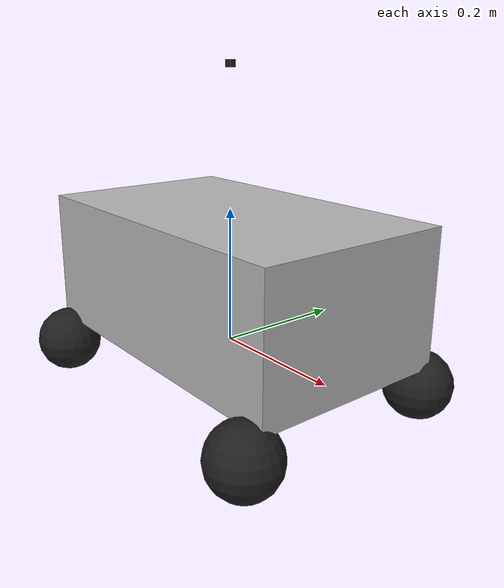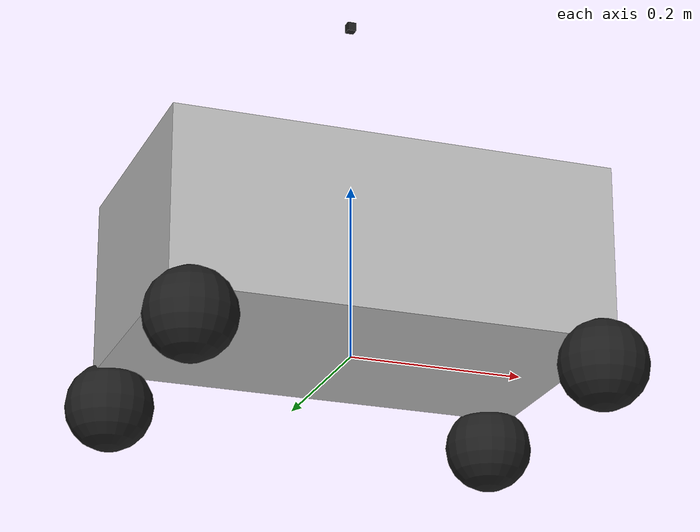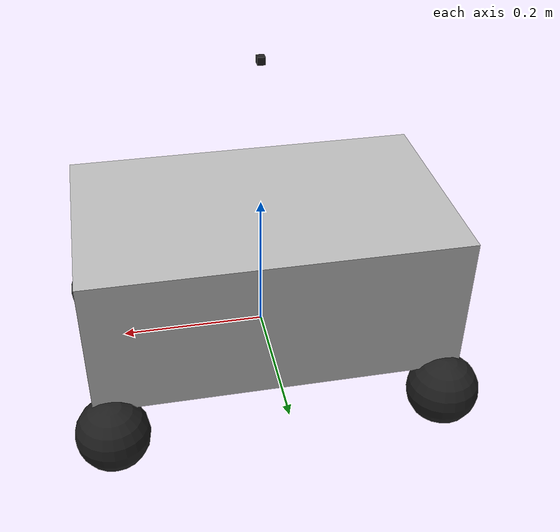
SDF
<?xml version='1.0'?>
<sdf version='1.6'>
  <model name='omnirob'>
    <link name='omnirob_footprint'>
      <pose frame=''>0 0 0 0 -0 0</pose>
      <inertial>
        <pose frame=''>0 0 0.102263 0 -0 0</pose>
        <mass>15.114</mass>
        <inertia>
          <ixx>1.01118</ixx>
          <ixy>0</ixy>
          <ixz>0</ixz>
          <iyy>1.01118</iyy>
          <iyz>0</iyz>
          <izz>1.001</izz>
        </inertia>
      </inertial>
      <gravity>1</gravity>
      <velocity_decay/>
      <sensor name="hls_lfcd_lds" type="ray">
        <always_on>true</always_on>
        <visualize>true</visualize>
        <pose>0.0 0 0.4 0 0 0</pose>
        <update_rate>5</update_rate>
        <ray>
          <scan>
            <horizontal>
              <samples>360</samples>
              <resolution>1.000000</resolution>
              <min_angle>0.000000</min_angle>
              <max_angle>6.280000</max_angle>
            </horizontal>
          </scan>
          <range>
            <min>0.120000</min>
            <max>3.5</max>
            <resolution>0.015000</resolution>
          </range>
          <noise>
            <type>gaussian</type>
            <mean>0.0</mean>
            <stddev>0.01</stddev>
          </noise>
        </ray>
        <plugin name="turtlebot3_laserscan" filename="libgazebo_ros_ray_sensor.so">
          <ros>
            <argument>~/out:=scan</argument>
          </ros>
          <output_type>sensor_msgs/LaserScan</output_type>
          <frame_name>base_scan</frame_name>
        </plugin>
      </sensor>

      <self_collide>0</self_collide>
      <enable_wind>0</enable_wind>
      <kinematic>0</kinematic>
      <visual name='omnirob_footprint_fixed_joint_lump__base_scan_visual_1'>
        <pose frame=''>0 0 0.4 0 -0 0</pose>
        <geometry>
          <box>
            <size>0.01 0.01 0.01</size>
          </box>
        </geometry>
        <material>
          <script>
            <name>Gazebo/FlatBlack</name>
            <uri>file://media/materials/scripts/gazebo.material</uri>
          </script>
          <shader type='pixel'/>
        </material>
        <transparency>0</transparency>
        <cast_shadows>1</cast_shadows>
      </visual>
      <visual name='omnirob_footprint_fixed_joint_lump__omnirob_body_visual'>
        <pose frame=''>0 0 0.1 0 -0 0</pose>
        <geometry>
          <box>
            <size>0.5 0.3 0.2</size>
          </box>
        </geometry>
        <material>
          <shader type='pixel'/>
        </material>
        <transparency>0</transparency>
        <cast_shadows>1</cast_shadows>
      </visual>
      <collision name='omnirob_footprint_fixed_joint_lump__omnirob_body_collision'>
        <laser_retro>0</laser_retro>
        <max_contacts>10</max_contacts>
        <pose frame=''>0 0 0.1 0 -0 0</pose>
        <geometry>
          <box>
            <size>0.5 0.3 0.2</size>
          </box>
        </geometry>
        <surface>
          <friction>
            <ode>
              <mu>1</mu>
              <mu2>1</mu2>
              <fdir1>0 0 0</fdir1>
              <slip1>0</slip1>
              <slip2>0</slip2>
            </ode>
            <torsional>
              <coefficient>1</coefficient>
              <patch_radius>0</patch_radius>
              <surface_radius>0</surface_radius>
              <use_patch_radius>1</use_patch_radius>
              <ode>
                <slip>0</slip>
              </ode>
            </torsional>
          </friction>
          <bounce>
            <restitution_coefficient>0</restitution_coefficient>
            <threshold>1e+06</threshold>
          </bounce>
          <contact>
            <collide_without_contact>0</collide_without_contact>
            <collide_without_contact_bitmask>1</collide_without_contact_bitmask>
            <collide_bitmask>1</collide_bitmask>
            <ode>
              <soft_cfm>0</soft_cfm>
              <soft_erp>0.2</soft_erp>
              <kp>1e+13</kp>
              <kd>1</kd>
              <max_vel>0.01</max_vel>
              <min_depth>0</min_depth>
            </ode>
            <bullet>
              <split_impulse>1</split_impulse>
              <split_impulse_penetration_threshold>-0.01</split_impulse_penetration_threshold>
              <soft_cfm>0</soft_cfm>
              <soft_erp>0.2</soft_erp>
              <kp>1e+13</kp>
              <kd>1</kd>
            </bullet>
          </contact>
        </surface>
      </collision>
      <collision name='omnirob_footprint_fixed_joint_lump__base_scan_collision_1'>
        <laser_retro>0</laser_retro>
        <max_contacts>10</max_contacts>
        <pose frame=''>0.015 0 0.3935 0 -0 0</pose>
        <geometry>
          <cylinder>
            <radius>0.055</radius>
            <length>0.0315</length>
          </cylinder>
        </geometry>
        <surface>
          <friction>
            <ode>
              <mu>1</mu>
              <mu2>1</mu2>
              <fdir1>0 0 0</fdir1>
              <slip1>0</slip1>
              <slip2>0</slip2>
            </ode>
            <torsional>
              <coefficient>1</coefficient>
              <patch_radius>0</patch_radius>
              <surface_radius>0</surface_radius>
              <use_patch_radius>1</use_patch_radius>
              <ode>
                <slip>0</slip>
              </ode>
            </torsional>
          </friction>
          <bounce>
            <restitution_coefficient>0</restitution_coefficient>
            <threshold>1e+06</threshold>
          </bounce>
          <contact>
            <collide_without_contact>0</collide_without_contact>
            <collide_without_contact_bitmask>1</collide_without_contact_bitmask>
            <collide_bitmask>1</collide_bitmask>
            <ode>
              <soft_cfm>0</soft_cfm>
              <soft_erp>0.2</soft_erp>
              <kp>1e+13</kp>
              <kd>1</kd>
              <max_vel>0.01</max_vel>
              <min_depth>0</min_depth>
            </ode>
            <bullet>
              <split_impulse>1</split_impulse>
              <split_impulse_penetration_threshold>-0.01</split_impulse_penetration_threshold>
              <soft_cfm>0</soft_cfm>
              <soft_erp>0.2</soft_erp>
              <kp>1e+13</kp>
              <kd>1</kd>
            </bullet>
          </contact>
        </surface>
      </collision>
    </link>
    <link name='caster_link_back_left'>
      <pose frame=''>-0.228 0.158 -0.034 0 -0 0</pose>
      <inertial>
        <pose frame=''>0 0 0 0 -0 0</pose>
        <mass>0.1</mass>
        <inertia>
          <ixx>0.0124118</ixx>
          <ixy>-0.000711734</ixy>
          <ixz>0.00050273</ixz>
          <iyy>0.0152182</iyy>
          <iyz>-4.27347e-06</iyz>
          <izz>0.011764</izz>
        </inertia>
      </inertial>
      <self_collide>0</self_collide>
      <enable_wind>0</enable_wind>
      <kinematic>0</kinematic>
    </link>
    <link name='caster_link_back_right'>
      <pose frame=''>-0.228 -0.158 -0.034 0 -0 0</pose>
      <inertial>
        <pose frame=''>0 0 0 0 -0 0</pose>
        <mass>0.1</mass>
        <inertia>
          <ixx>0.0124118</ixx>
          <ixy>-0.000711734</ixy>
          <ixz>0.00050273</ixz>
          <iyy>0.0152182</iyy>
          <iyz>-4.27347e-06</iyz>
          <izz>0.011764</izz>
        </inertia>
      </inertial>
      <self_collide>0</self_collide>
      <enable_wind>0</enable_wind>
      <kinematic>0</kinematic>
    </link>
    <link name='caster_link_front_left'>
      <pose frame=''>0.228 0.158 -0.034 0 -0 0</pose>
      <inertial>
        <pose frame=''>0 0 0 0 -0 0</pose>
        <mass>0.1</mass>
        <inertia>
          <ixx>0.0124118</ixx>
          <ixy>-0.000711734</ixy>
          <ixz>0.00050273</ixz>
          <iyy>0.0152182</iyy>
          <iyz>-4.27347e-06</iyz>
          <izz>0.011764</izz>
        </inertia>
      </inertial>
      <self_collide>0</self_collide>
      <enable_wind>0</enable_wind>
      <kinematic>0</kinematic>
    </link>
    <link name='caster_link_front_right'>
      <pose frame=''>0.228 -0.158 -0.034 0 -0 0</pose>
      <inertial>
        <pose frame=''>0 0 0 0 -0 0</pose>
        <mass>0.1</mass>
        <inertia>
          <ixx>0.0124118</ixx>
          <ixy>-0.000711734</ixy>
          <ixz>0.00050273</ixz>
          <iyy>0.0152182</iyy>
          <iyz>-4.27347e-06</iyz>
          <izz>0.011764</izz>
        </inertia>
      </inertial>
      <self_collide>0</self_collide>
      <enable_wind>0</enable_wind>
      <kinematic>0</kinematic>
    </link>
    <link name='wheel_link_back_left'>
      <pose frame=''>-0.228 0.158 -0.034 0 -0 0</pose>
      <inertial>
        <pose frame=''>0 0 0 0 -0 0</pose>
        <mass>0.4</mass>
        <inertia>
          <ixx>0.0124118</ixx>
          <ixy>-0.000711734</ixy>
          <ixz>0.00050273</ixz>
          <iyy>0.0152182</iyy>
          <iyz>-4.27347e-06</iyz>
          <izz>0.011764</izz>
        </inertia>
      </inertial>
      <gravity>1</gravity>
      <velocity_decay/>
      <self_collide>0</self_collide>
      <enable_wind>0</enable_wind>
      <kinematic>0</kinematic>
      <visual name='wheel_link_back_left_visual'>
        <pose frame=''>0 0 0 0 -0 0</pose>
        <geometry>
          <sphere>
            <radius>0.05</radius>
          </sphere>
        </geometry>
        <material>
          <script>
            <name>Gazebo/FlatBlack</name>
            <uri>file://media/materials/scripts/gazebo.material</uri>
          </script>
          <shader type='pixel'/>
        </material>
        <transparency>0</transparency>
        <cast_shadows>1</cast_shadows>
      </visual>
      <collision name='wheel_link_back_left_collision'>
        <laser_retro>0</laser_retro>
        <max_contacts>10</max_contacts>
        <pose frame=''>0 0 0 1.5708 -0 0</pose>
        <geometry>
          <cylinder>
            <radius>0.05</radius>
            <length>0.05</length>
          </cylinder>
        </geometry>
        <surface>
          <friction>
            <ode>
              <mu>0.1</mu>
              <mu2>0.1</mu2>
              <fdir1>1 1 0</fdir1>
              <slip1>0</slip1>
              <slip2>0</slip2>
            </ode>
            <torsional>
              <coefficient>1</coefficient>
              <patch_radius>0</patch_radius>
              <surface_radius>0</surface_radius>
              <use_patch_radius>1</use_patch_radius>
              <ode>
                <slip>0</slip>
              </ode>
            </torsional>
          </friction>
          <bounce>
            <restitution_coefficient>0</restitution_coefficient>
            <threshold>1e+06</threshold>
          </bounce>
          <contact>
            <collide_without_contact>0</collide_without_contact>
            <collide_without_contact_bitmask>1</collide_without_contact_bitmask>
            <collide_bitmask>1</collide_bitmask>
            <ode>
              <soft_cfm>0</soft_cfm>
              <soft_erp>0.2</soft_erp>
              <kp>500000</kp>
              <kd>10</kd>
              <max_vel>0.1</max_vel>
              <min_depth>0.001</min_depth>
            </ode>
            <bullet>
              <split_impulse>1</split_impulse>
              <split_impulse_penetration_threshold>-0.01</split_impulse_penetration_threshold>
              <soft_cfm>0</soft_cfm>
              <soft_erp>0.2</soft_erp>
              <kp>500000</kp>
              <kd>10</kd>
            </bullet>
          </contact>
        </surface>
      </collision>
    </link>
    <link name='wheel_link_back_right'>
      <pose frame=''>-0.228 -0.158 -0.034 0 -0 0</pose>
      <inertial>
        <pose frame=''>0 0 0 0 -0 0</pose>
        <mass>0.4</mass>
        <inertia>
          <ixx>0.0124118</ixx>
          <ixy>-0.000711734</ixy>
          <ixz>0.00050273</ixz>
          <iyy>0.0152182</iyy>
          <iyz>-4.27347e-06</iyz>
          <izz>0.011764</izz>
        </inertia>
      </inertial>
      <gravity>1</gravity>
      <velocity_decay/>
      <self_collide>0</self_collide>
      <enable_wind>0</enable_wind>
      <kinematic>0</kinematic>
      <visual name='wheel_link_back_right_visual'>
        <pose frame=''>0 0 0 0 -0 0</pose>
        <geometry>
          <sphere>
            <radius>0.05</radius>
          </sphere>
        </geometry>
        <material>
          <script>
            <name>Gazebo/FlatBlack</name>
            <uri>file://media/materials/scripts/gazebo.material</uri>
          </script>
          <shader type='pixel'/>
        </material>
        <transparency>0</transparency>
        <cast_shadows>1</cast_shadows>
      </visual>
      <collision name='wheel_link_back_right_collision'>
        <laser_retro>0</laser_retro>
        <max_contacts>10</max_contacts>
        <pose frame=''>0 0 0 1.5708 -0 0</pose>
        <geometry>
          <cylinder>
            <radius>0.05</radius>
            <length>0.05</length>
          </cylinder>
        </geometry>
        <surface>
          <friction>
            <ode>
              <mu>0.1</mu>
              <mu2>0.1</mu2>
              <fdir1>1 1 0</fdir1>
              <slip1>0</slip1>
              <slip2>0</slip2>
            </ode>
            <torsional>
              <coefficient>1</coefficient>
              <patch_radius>0</patch_radius>
              <surface_radius>0</surface_radius>
              <use_patch_radius>1</use_patch_radius>
              <ode>
                <slip>0</slip>
              </ode>
            </torsional>
          </friction>
          <bounce>
            <restitution_coefficient>0</restitution_coefficient>
            <threshold>1e+06</threshold>
          </bounce>
          <contact>
            <collide_without_contact>0</collide_without_contact>
            <collide_without_contact_bitmask>1</collide_without_contact_bitmask>
            <collide_bitmask>1</collide_bitmask>
            <ode>
              <soft_cfm>0</soft_cfm>
              <soft_erp>0.2</soft_erp>
              <kp>500000</kp>
              <kd>10</kd>
              <max_vel>0.1</max_vel>
              <min_depth>0.001</min_depth>
            </ode>
            <bullet>
              <split_impulse>1</split_impulse>
              <split_impulse_penetration_threshold>-0.01</split_impulse_penetration_threshold>
              <soft_cfm>0</soft_cfm>
              <soft_erp>0.2</soft_erp>
              <kp>500000</kp>
              <kd>10</kd>
            </bullet>
          </contact>
        </surface>
      </collision>
    </link>
    <link name='wheel_link_front_left'>
      <pose frame=''>0.228 0.158 -0.034 0 -0 0</pose>
      <inertial>
        <pose frame=''>0 0 0 0 -0 0</pose>
        <mass>0.4</mass>
        <inertia>
          <ixx>0.0124118</ixx>
          <ixy>-0.000711734</ixy>
          <ixz>0.00050273</ixz>
          <iyy>0.0152182</iyy>
          <iyz>-4.27347e-06</iyz>
          <izz>0.011764</izz>
        </inertia>
      </inertial>
      <gravity>1</gravity>
      <velocity_decay/>
      <self_collide>0</self_collide>
      <enable_wind>0</enable_wind>
      <kinematic>0</kinematic>
      <visual name='wheel_link_front_left_visual'>
        <pose frame=''>0 0 0 0 -0 0</pose>
        <geometry>
          <sphere>
            <radius>0.05</radius>
          </sphere>
        </geometry>
        <material>
          <script>
            <name>Gazebo/FlatBlack</name>
            <uri>file://media/materials/scripts/gazebo.material</uri>
          </script>
          <shader type='pixel'/>
        </material>
        <transparency>0</transparency>
        <cast_shadows>1</cast_shadows>
      </visual>
      <collision name='wheel_link_front_left_collision'>
        <laser_retro>0</laser_retro>
        <max_contacts>10</max_contacts>
        <pose frame=''>0 0 0 1.5708 -0 0</pose>
        <geometry>
          <cylinder>
            <radius>0.05</radius>
            <length>0.05</length>
          </cylinder>
        </geometry>
        <surface>
          <friction>
            <ode>
              <mu>0.1</mu>
              <mu2>0.1</mu2>
              <fdir1>1 1 0</fdir1>
              <slip1>0</slip1>
              <slip2>0</slip2>
            </ode>
            <torsional>
              <coefficient>1</coefficient>
              <patch_radius>0</patch_radius>
              <surface_radius>0</surface_radius>
              <use_patch_radius>1</use_patch_radius>
              <ode>
                <slip>0</slip>
              </ode>
            </torsional>
          </friction>
          <bounce>
            <restitution_coefficient>0</restitution_coefficient>
            <threshold>1e+06</threshold>
          </bounce>
          <contact>
            <collide_without_contact>0</collide_without_contact>
            <collide_without_contact_bitmask>1</collide_without_contact_bitmask>
            <collide_bitmask>1</collide_bitmask>
            <ode>
              <soft_cfm>0</soft_cfm>
              <soft_erp>0.2</soft_erp>
              <kp>500000</kp>
              <kd>10</kd>
              <max_vel>0.1</max_vel>
              <min_depth>0.001</min_depth>
            </ode>
            <bullet>
              <split_impulse>1</split_impulse>
              <split_impulse_penetration_threshold>-0.01</split_impulse_penetration_threshold>
              <soft_cfm>0</soft_cfm>
              <soft_erp>0.2</soft_erp>
              <kp>500000</kp>
              <kd>10</kd>
            </bullet>
          </contact>
        </surface>
      </collision>
    </link>
    <link name='wheel_link_front_right'>
      <pose frame=''>0.228 -0.158 -0.034 0 -0 0</pose>
      <inertial>
        <pose frame=''>0 0 0 0 -0 0</pose>
        <mass>0.4</mass>
        <inertia>
          <ixx>0.0124118</ixx>
          <ixy>-0.000711734</ixy>
          <ixz>0.00050273</ixz>
          <iyy>0.0152182</iyy>
          <iyz>-4.27347e-06</iyz>
          <izz>0.011764</izz>
        </inertia>
      </inertial>
      <gravity>1</gravity>
      <velocity_decay/>
      <self_collide>0</self_collide>
      <enable_wind>0</enable_wind>
      <kinematic>0</kinematic>
      <visual name='wheel_link_front_right_visual'>
        <pose frame=''>0 0 0 0 -0 0</pose>
        <geometry>
          <sphere>
            <radius>0.05</radius>
          </sphere>
        </geometry>
        <material>
          <script>
            <name>Gazebo/FlatBlack</name>
            <uri>file://media/materials/scripts/gazebo.material</uri>
          </script>
          <shader type='pixel'/>
        </material>
        <transparency>0</transparency>
        <cast_shadows>1</cast_shadows>
      </visual>
      <collision name='wheel_link_front_right_collision'>
        <laser_retro>0</laser_retro>
        <max_contacts>10</max_contacts>
        <pose frame=''>0 0 0 1.5708 -0 0</pose>
        <geometry>
          <cylinder>
            <radius>0.05</radius>
            <length>0.05</length>
          </cylinder>
        </geometry>
        <surface>
          <friction>
            <ode>
              <mu>0.1</mu>
              <mu2>0.1</mu2>
              <fdir1>1 1 0</fdir1>
              <slip1>0</slip1>
              <slip2>0</slip2>
            </ode>
            <torsional>
              <coefficient>1</coefficient>
              <patch_radius>0</patch_radius>
              <surface_radius>0</surface_radius>
              <use_patch_radius>1</use_patch_radius>
              <ode>
                <slip>0</slip>
              </ode>
            </torsional>
          </friction>
          <bounce>
            <restitution_coefficient>0</restitution_coefficient>
            <threshold>1e+06</threshold>
          </bounce>
          <contact>
            <collide_without_contact>0</collide_without_contact>
            <collide_without_contact_bitmask>1</collide_without_contact_bitmask>
            <collide_bitmask>1</collide_bitmask>
            <ode>
              <soft_cfm>0</soft_cfm>
              <soft_erp>0.2</soft_erp>
              <kp>500000</kp>
              <kd>10</kd>
              <max_vel>0.1</max_vel>
              <min_depth>0.001</min_depth>
            </ode>
            <bullet>
              <split_impulse>1</split_impulse>
              <split_impulse_penetration_threshold>-0.01</split_impulse_penetration_threshold>
              <soft_cfm>0</soft_cfm>
              <soft_erp>0.2</soft_erp>
              <kp>500000</kp>
              <kd>10</kd>
            </bullet>
          </contact>
        </surface>
      </collision>
    </link>
    <joint name='caster_joint_back_left' type='revolute'>
      <parent>omnirob_footprint</parent>
      <child>caster_link_back_left</child>
      <pose frame=''>0 0 0 0 -0 0</pose>
      <axis>
        <xyz>0 0 1</xyz>
        <use_parent_model_frame>1</use_parent_model_frame>
        <limit>
          <lower>-1e+16</lower>
          <upper>1e+16</upper>
          <effort>-1</effort>
          <velocity>-1</velocity>
        </limit>
        <dynamics>
          <spring_reference>0</spring_reference>
          <spring_stiffness>0</spring_stiffness>
          <damping>1</damping>
          <friction>1</friction>
        </dynamics>
      </axis>
      <physics>
        <ode>
          <limit>
            <cfm>0</cfm>
            <erp>0.2</erp>
          </limit>
          <suspension>
            <cfm>0</cfm>
            <erp>0.2</erp>
          </suspension>
        </ode>
      </physics>
    </joint>
    <joint name='caster_joint_back_right' type='revolute'>
      <parent>omnirob_footprint</parent>
      <child>caster_link_back_right</child>
      <pose frame=''>0 0 0 0 -0 0</pose>
      <axis>
        <xyz>0 0 1</xyz>
        <use_parent_model_frame>1</use_parent_model_frame>
        <limit>
          <lower>-1e+16</lower>
          <upper>1e+16</upper>
          <effort>-1</effort>
          <velocity>-1</velocity>
        </limit>
        <dynamics>
          <spring_reference>0</spring_reference>
          <spring_stiffness>0</spring_stiffness>
          <damping>1</damping>
          <friction>1</friction>
        </dynamics>
      </axis>
      <physics>
        <ode>
          <limit>
            <cfm>0</cfm>
            <erp>0.2</erp>
          </limit>
          <suspension>
            <cfm>0</cfm>
            <erp>0.2</erp>
          </suspension>
        </ode>
      </physics>
    </joint>
    <joint name='caster_joint_front_left' type='revolute'>
      <parent>omnirob_footprint</parent>
      <child>caster_link_front_left</child>
      <pose frame=''>0 0 0 0 -0 0</pose>
      <axis>
        <xyz>0 0 1</xyz>
        <use_parent_model_frame>1</use_parent_model_frame>
        <limit>
          <lower>-1e+16</lower>
          <upper>1e+16</upper>
          <effort>-1</effort>
          <velocity>-1</velocity>
        </limit>
        <dynamics>
          <spring_reference>0</spring_reference>
          <spring_stiffness>0</spring_stiffness>
          <damping>1</damping>
          <friction>1</friction>
        </dynamics>
      </axis>
      <physics>
        <ode>
          <limit>
            <cfm>0</cfm>
            <erp>0.2</erp>
          </limit>
          <suspension>
            <cfm>0</cfm>
            <erp>0.2</erp>
          </suspension>
        </ode>
      </physics>
    </joint>
    <joint name='caster_joint_front_right' type='revolute'>
      <parent>omnirob_footprint</parent>
      <child>caster_link_front_right</child>
      <pose frame=''>0 0 0 0 -0 0</pose>
      <axis>
        <xyz>0 0 1</xyz>
        <use_parent_model_frame>1</use_parent_model_frame>
        <limit>
          <lower>-1e+16</lower>
          <upper>1e+16</upper>
          <effort>-1</effort>
          <velocity>-1</velocity>
        </limit>
        <dynamics>
          <spring_reference>0</spring_reference>
          <spring_stiffness>0</spring_stiffness>
          <damping>1</damping>
          <friction>1</friction>
        </dynamics>
      </axis>
      <physics>
        <ode>
          <limit>
            <cfm>0</cfm>
            <erp>0.2</erp>
          </limit>
          <suspension>
            <cfm>0</cfm>
            <erp>0.2</erp>
          </suspension>
        </ode>
      </physics>
    </joint>
    <joint name='wheel_joint_back_left' type='revolute'>
      <parent>caster_link_back_left</parent>
      <child>wheel_link_back_left</child>
      <pose frame=''>0 0 0 0 -0 0</pose>
      <axis>
        <xyz>0 1 0</xyz>
        <use_parent_model_frame>1</use_parent_model_frame>
        <limit>
          <lower>-1e+16</lower>
          <upper>1e+16</upper>
          <effort>-1</effort>
          <velocity>-1</velocity>
        </limit>
        <dynamics>
          <spring_reference>0</spring_reference>
          <spring_stiffness>0</spring_stiffness>
          <damping>1</damping>
          <friction>1</friction>
        </dynamics>
      </axis>
      <physics>
        <ode>
          <limit>
            <cfm>0</cfm>
            <erp>0.2</erp>
          </limit>
          <suspension>
            <cfm>0</cfm>
            <erp>0.2</erp>
          </suspension>
        </ode>
      </physics>
    </joint>
    <joint name='wheel_joint_back_right' type='revolute'>
      <parent>caster_link_back_right</parent>
      <child>wheel_link_back_right</child>
      <pose frame=''>0 0 0 0 -0 0</pose>
      <axis>
        <xyz>0 1 0</xyz>
        <use_parent_model_frame>1</use_parent_model_frame>
        <limit>
          <lower>-1e+16</lower>
          <upper>1e+16</upper>
          <effort>-1</effort>
          <velocity>-1</velocity>
        </limit>
        <dynamics>
          <spring_reference>0</spring_reference>
          <spring_stiffness>0</spring_stiffness>
          <damping>1</damping>
          <friction>1</friction>
        </dynamics>
      </axis>
      <physics>
        <ode>
          <limit>
            <cfm>0</cfm>
            <erp>0.2</erp>
          </limit>
          <suspension>
            <cfm>0</cfm>
            <erp>0.2</erp>
          </suspension>
        </ode>
      </physics>
    </joint>
    <joint name='wheel_joint_front_left' type='revolute'>
      <parent>caster_link_front_left</parent>
      <child>wheel_link_front_left</child>
      <pose frame=''>0 0 0 0 -0 0</pose>
      <axis>
        <xyz>0 1 0</xyz>
        <use_parent_model_frame>1</use_parent_model_frame>
        <limit>
          <lower>-1e+16</lower>
          <upper>1e+16</upper>
          <effort>-1</effort>
          <velocity>-1</velocity>
        </limit>
        <dynamics>
          <spring_reference>0</spring_reference>
          <spring_stiffness>0</spring_stiffness>
          <damping>1</damping>
          <friction>1</friction>
        </dynamics>
      </axis>
      <physics>
        <ode>
          <limit>
            <cfm>0</cfm>
            <erp>0.2</erp>
          </limit>
          <suspension>
            <cfm>0</cfm>
            <erp>0.2</erp>
          </suspension>
        </ode>
      </physics>
    </joint>
    <joint name='wheel_joint_front_right' type='revolute'>
      <parent>caster_link_front_right</parent>
      <child>wheel_link_front_right</child>
      <pose frame=''>0 0 0 0 -0 0</pose>
      <axis>
        <xyz>0 1 0</xyz>
        <use_parent_model_frame>1</use_parent_model_frame>
        <limit>
          <lower>-1e+16</lower>
          <upper>1e+16</upper>
          <effort>-1</effort>
          <velocity>-1</velocity>
        </limit>
        <dynamics>
          <spring_reference>0</spring_reference>
          <spring_stiffness>0</spring_stiffness>
          <damping>1</damping>
          <friction>1</friction>
        </dynamics>
      </axis>
      <physics>
        <ode>
          <limit>
            <cfm>0</cfm>
            <erp>0.2</erp>
          </limit>
          <suspension>
            <cfm>0</cfm>
            <erp>0.2</erp>
          </suspension>
        </ode>
      </physics>
    </joint>
    <static>0</static>
    <allow_auto_disable>1</allow_auto_disable>
    <plugin name='base_controller' filename='libgazebo_ros_planar_move.so'>
      <ros>

        <!-- Add a namespace -->
        <namespace>/</namespace>

        <!-- Remap the default topic -->

      </ros>

      <!-- Set control loop update rate -->
      <update_rate>100</update_rate>
      <!-- Set odom publish rate -->
      <publish_rate>10</publish_rate>

      <!-- Set if odom required -->
      <publish_odom>true</publish_odom>
      <publish_odom_tf>true</publish_odom_tf>

      <!-- Frame IDs -->
      <odometry_frame>odom_demo</odometry_frame>
      <robot_base_frame>link</robot_base_frame>

      <!-- Set odom covariance -->
      <covariance_x>0.0001</covariance_x>
      <covariance_y>0.0001</covariance_y>
      <covariance_yaw>0.01</covariance_yaw>
    </plugin>
  </model>
</sdf>
